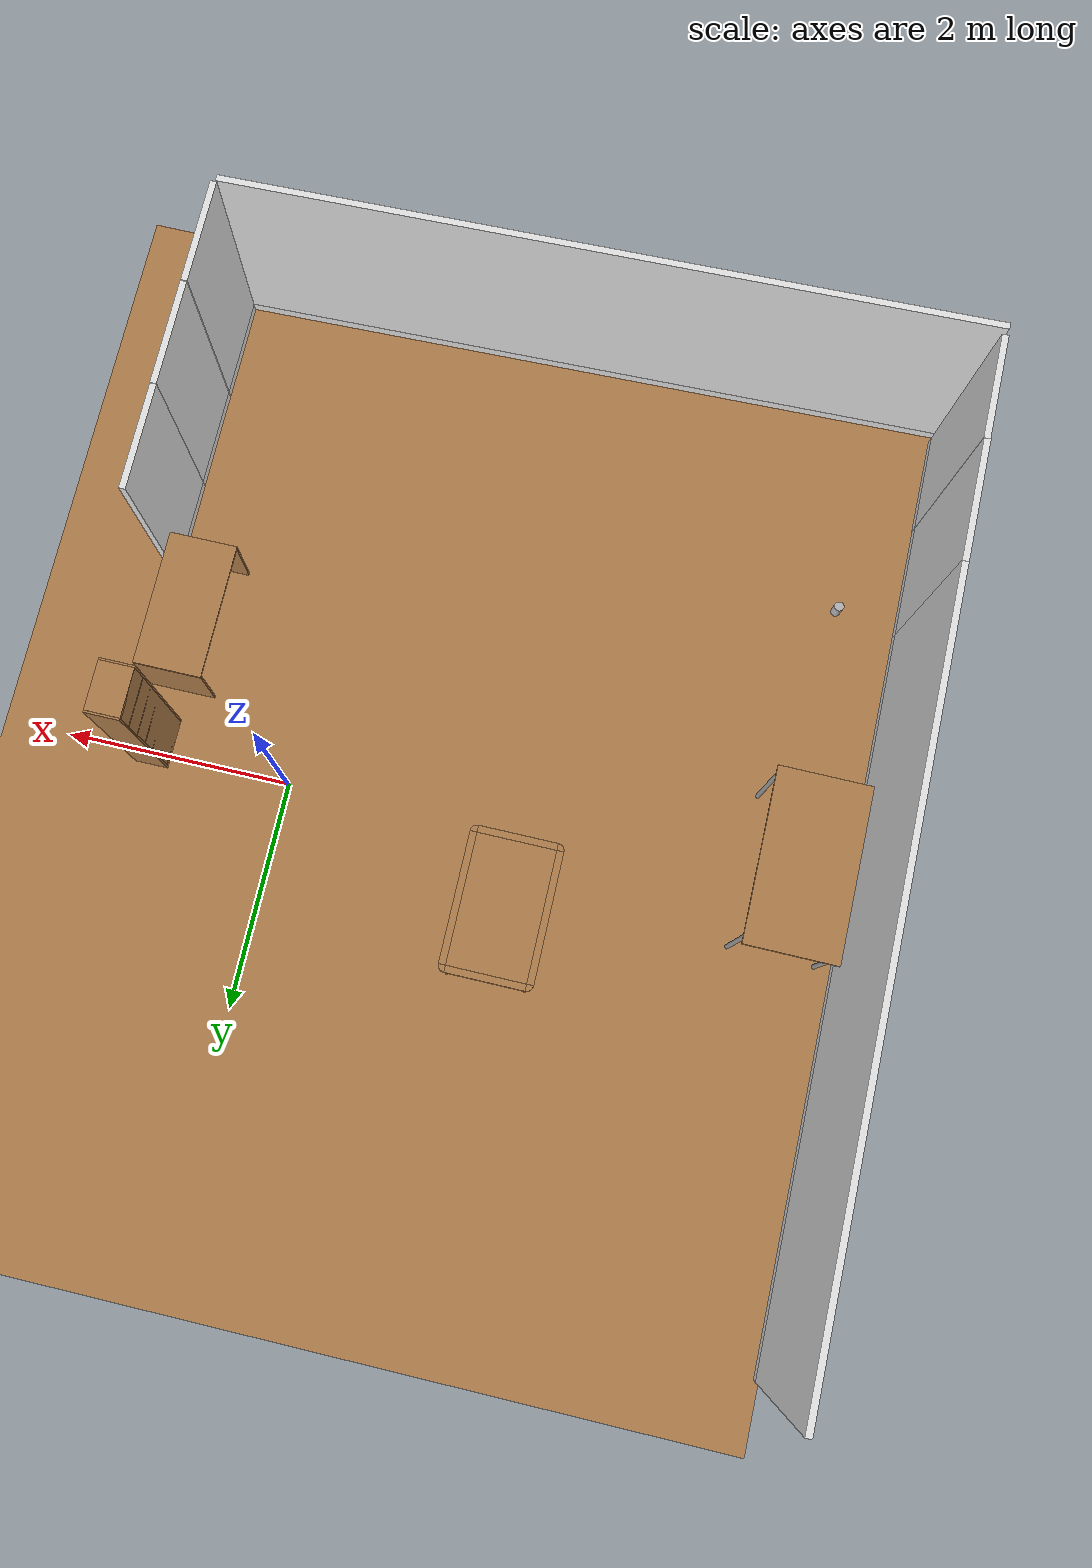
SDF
<sdf version="1.6">
 <world name="default">
  <model name="wrc_ground_plane">
   <static>1</static>
   <link name="link">
    <collision name="collision">
     <geometry><plane><normal>0 0 1</normal><size>10 10</size></plane></geometry>
     <surface>
      <contact><collide_bitmask>65535</collide_bitmask></contact>
      <friction><ode><mu>100</mu><mu2>50</mu2></ode></friction>
     </surface>
    </collision>
    <visual name="visual">
     <cast_shadows>0</cast_shadows>
     <geometry><plane><normal>0 0 1</normal><size>10 10</size></plane></geometry>
     <material>
      <script><uri>model://wrc_ground_plane/materials/wood.material</uri><name>WRS/WoodFloor</name></script>
     </material>
    </visual>
   </link>
  </model>
  <model name="kitchen_table">
   <link name="link">
    <inertial>
     <mass>10</mass>
     <inertia><ixx>1</ixx><ixy>0</ixy><ixz>0</ixz><iyy>1</iyy><iyz>0</iyz><izz>1</izz></inertia>
    </inertial>
    <visual name="center_board">
     <pose>0 0 0.68 0 -0 0</pose>
     <geometry><box><size>0.68 1.13 0.04</size></box></geometry>
     <material>
      <script><uri>model://base_materials/wood/scripts/wood.material</uri><name>base_materials/wood</name></script>
     </material>
    </visual>
    <collision name="collision_center_board">
     <pose>0 0 0.68 0 -0 0</pose>
     <geometry><box><size>0.68 1.13 0.04</size></box></geometry>
    </collision>
    <visual name="front_board">
     <pose>0.37 0 0.68 0 -0 0</pose>
     <geometry><box><size>0.06 1.13 0.04</size></box></geometry>
     <material>
      <script><uri>model://base_materials/wood/scripts/wood.material</uri><name>base_materials/wood</name></script>
     </material>
    </visual>
    <collision name="collision_front_board">
     <pose>0.37 0 0.68 0 -0 0</pose>
     <geometry><box><size>0.06 1.13 0.04</size></box></geometry>
    </collision>
    <visual name="back_board">
     <pose>-0.37 0 0.68 0 -0 0</pose>
     <geometry><box><size>0.06 1.13 0.04</size></box></geometry>
     <material>
      <script><uri>model://base_materials/wood/scripts/wood.material</uri><name>base_materials/wood</name></script>
     </material>
    </visual>
    <collision name="collision_back_board">
     <pose>-0.37 0 0.68 0 -0 0</pose>
     <geometry><box><size>0.06 1.13 0.04</size></box></geometry>
    </collision>
    <visual name="right_board">
     <pose>0 0.595 0.68 0 -0 0</pose>
     <geometry><box><size>0.68 0.06 0.04</size></box></geometry>
     <material>
      <script><uri>model://base_materials/wood/scripts/wood.material</uri><name>base_materials/wood</name></script>
     </material>
    </visual>
    <collision name="collision_right_board">
     <pose>0 0.595 0.68 0 -0 0</pose>
     <geometry><box><size>0.68 0.06 0.04</size></box></geometry>
    </collision>
    <visual name="left_board">
     <pose>0 -0.595 0.68 0 -0 0</pose>
     <geometry><box><size>0.68 0.06 0.04</size></box></geometry>
     <material>
      <script><uri>model://base_materials/wood/scripts/wood.material</uri><name>base_materials/wood</name></script>
     </material>
    </visual>
    <collision name="collision_left_board">
     <pose>0 -0.595 0.68 0 -0 0</pose>
     <geometry><box><size>0.68 0.06 0.04</size></box></geometry>
    </collision>
    <visual name="front_right_corner_board">
     <pose>0.34 0.565 0.68 0 -0 0</pose>
     <geometry><cylinder><radius>0.06</radius><length>0.039</length></cylinder></geometry>
     <material>
      <script><uri>model://base_materials/wood/scripts/wood.material</uri><name>base_materials/wood</name></script>
     </material>
    </visual>
    <collision name="collision_front_right_corner_board">
     <pose>0.34 0.565 0.68 0 -0 0</pose>
     <geometry><cylinder><radius>0.06</radius><length>0.039</length></cylinder></geometry>
    </collision>
    <visual name="front_left_corner_board">
     <pose>0.34 -0.565 0.68 0 -0 0</pose>
     <geometry><cylinder><radius>0.06</radius><length>0.039</length></cylinder></geometry>
     <material>
      <script><uri>model://base_materials/wood/scripts/wood.material</uri><name>base_materials/wood</name></script>
     </material>
    </visual>
    <collision name="collision_front_left_corner_board">
     <pose>0.34 -0.565 0.68 0 -0 0</pose>
     <geometry><cylinder><radius>0.06</radius><length>0.039</length></cylinder></geometry>
    </collision>
    <visual name="front_back_right_corner_board">
     <pose>-0.34 0.565 0.68 0 -0 0</pose>
     <geometry><cylinder><radius>0.06</radius><length>0.039</length></cylinder></geometry>
     <material>
      <script><uri>model://base_materials/wood/scripts/wood.material</uri><name>base_materials/wood</name></script>
     </material>
    </visual>
    <collision name="collision_back_right_corner_board">
     <pose>-0.34 0.565 0.68 0 -0 0</pose>
     <geometry><cylinder><radius>0.06</radius><length>0.039</length></cylinder></geometry>
    </collision>
    <visual name="front_back_left_corner_board">
     <pose>-0.34 -0.565 0.68 0 -0 0</pose>
     <geometry><cylinder><radius>0.06</radius><length>0.039</length></cylinder></geometry>
     <material>
      <script><uri>model://base_materials/wood/scripts/wood.material</uri><name>base_materials/wood</name></script>
     </material>
    </visual>
    <collision name="collision_back_left_corner_board">
     <pose>-0.34 -0.565 0.68 0 -0 0</pose>
     <geometry><cylinder><radius>0.06</radius><length>0.039</length></cylinder></geometry>
    </collision>
    <visual name="front_left_corner_frame1">
     <pose>0.345858 -0.57086 0.33 0 -0 0</pose>
     <geometry><cylinder><radius>0.02</radius><length>0.66</length></cylinder></geometry>
     <material>
      <script><uri>model://base_materials/wood/scripts/wood.material</uri><name>base_materials/wood</name></script>
     </material>
    </visual>
    <collision name="collision_front_left_corner_frame1">
     <pose>0.345858 -0.57086 0.33 0 -0 0</pose>
     <geometry><cylinder><radius>0.02</radius><length>0.66</length></cylinder></geometry>
    </collision>
    <visual name="front_left_corner_frame2">
     <pose>0.317574 -0.54257 0.33 0 -0 0.7854</pose>
     <geometry><box><size>0.04 0.08 0.66</size></box></geometry>
     <material>
      <script><uri>model://base_materials/wood/scripts/wood.material</uri><name>base_materials/wood</name></script>
     </material>
    </visual>
    <collision name="collision_front_left_corner_frame2">
     <pose>0.317574 -0.54257 0.33 0 -0 0.7854</pose>
     <geometry><box><size>0.04 0.08 0.66</size></box></geometry>
    </collision>
    <visual name="front_left_corner_frame3">
     <pose>0.289289 -0.51429 0.33 0 -0 0</pose>
     <geometry><cylinder><radius>0.02</radius><length>0.66</length></cylinder></geometry>
     <material>
      <script><uri>model://base_materials/wood/scripts/wood.material</uri><name>base_materials/wood</name></script>
     </material>
    </visual>
    <collision name="collision_front_left_corner_frame3">
     <pose>0.289289 -0.51429 0.33 0 -0 0</pose>
     <geometry><cylinder><radius>0.02</radius><length>0.66</length></cylinder></geometry>
    </collision>
    <visual name="front_right_corner_frame1">
     <pose>0.345858 0.57086 0.33 0 -0 0</pose>
     <geometry><cylinder><radius>0.02</radius><length>0.66</length></cylinder></geometry>
     <material>
      <script><uri>model://base_materials/wood/scripts/wood.material</uri><name>base_materials/wood</name></script>
     </material>
    </visual>
    <collision name="collision_front_right_corner_frame1">
     <pose>0.345858 0.57086 0.33 0 -0 0</pose>
     <geometry><cylinder><radius>0.02</radius><length>0.66</length></cylinder></geometry>
    </collision>
    <visual name="front_right_corner_frame2">
     <pose>0.317574 0.54257 0.33 0 0 -0.7854</pose>
     <geometry><box><size>0.04 0.08 0.66</size></box></geometry>
     <material>
      <script><uri>model://base_materials/wood/scripts/wood.material</uri><name>base_materials/wood</name></script>
     </material>
    </visual>
    <collision name="collision_front_right_corner_frame2">
     <pose>0.317574 0.54257 0.33 0 0 -0.7854</pose>
     <geometry><box><size>0.04 0.08 0.66</size></box></geometry>
    </collision>
    <visual name="front_right_corner_frame3">
     <pose>0.289289 0.51429 0.33 0 -0 0</pose>
     <geometry><cylinder><radius>0.02</radius><length>0.66</length></cylinder></geometry>
     <material>
      <script><uri>model://base_materials/wood/scripts/wood.material</uri><name>base_materials/wood</name></script>
     </material>
    </visual>
    <collision name="collision_front_right_corner_frame3">
     <pose>0.289289 0.51429 0.33 0 -0 0</pose>
     <geometry><cylinder><radius>0.02</radius><length>0.66</length></cylinder></geometry>
    </collision>
    <visual name="back_left_corner_frame1">
     <pose>-0.345858 -0.57086 0.33 0 -0 0</pose>
     <geometry><cylinder><radius>0.02</radius><length>0.66</length></cylinder></geometry>
     <material>
      <script><uri>model://base_materials/wood/scripts/wood.material</uri><name>base_materials/wood</name></script>
     </material>
    </visual>
    <collision name="collision_back_left_corner_frame1">
     <pose>-0.345858 -0.57086 0.33 0 -0 0</pose>
     <geometry><cylinder><radius>0.02</radius><length>0.66</length></cylinder></geometry>
    </collision>
    <visual name="back_left_corner_frame2">
     <pose>-0.317574 -0.54257 0.33 0 0 -0.7854</pose>
     <geometry><box><size>0.04 0.08 0.66</size></box></geometry>
     <material>
      <script><uri>model://base_materials/wood/scripts/wood.material</uri><name>base_materials/wood</name></script>
     </material>
    </visual>
    <collision name="collision_back_left_corner_frame2">
     <pose>-0.317574 -0.54257 0.33 0 0 -0.7854</pose>
     <geometry><box><size>0.04 0.08 0.66</size></box></geometry>
    </collision>
    <visual name="back_left_corner_frame3">
     <pose>-0.289289 -0.51429 0.33 0 -0 0</pose>
     <geometry><cylinder><radius>0.02</radius><length>0.66</length></cylinder></geometry>
     <material>
      <script><uri>model://base_materials/wood/scripts/wood.material</uri><name>base_materials/wood</name></script>
     </material>
    </visual>
    <collision name="collision_back_left_corner_frame3">
     <pose>-0.289289 -0.51429 0.33 0 -0 0</pose>
     <geometry><cylinder><radius>0.02</radius><length>0.66</length></cylinder></geometry>
    </collision>
    <visual name="back_right_corner_frame1">
     <pose>-0.345858 0.57086 0.33 0 -0 0</pose>
     <geometry><cylinder><radius>0.02</radius><length>0.66</length></cylinder></geometry>
     <material>
      <script><uri>model://base_materials/wood/scripts/wood.material</uri><name>base_materials/wood</name></script>
     </material>
    </visual>
    <collision name="collision_back_right_corner_frame1">
     <pose>-0.345858 0.57086 0.33 0 -0 0</pose>
     <geometry><cylinder><radius>0.02</radius><length>0.66</length></cylinder></geometry>
    </collision>
    <visual name="back_right_corner_frame2">
     <pose>-0.317574 0.54257 0.33 0 -0 0.7854</pose>
     <geometry><box><size>0.04 0.08 0.66</size></box></geometry>
     <material>
      <script><uri>model://base_materials/wood/scripts/wood.material</uri><name>base_materials/wood</name></script>
     </material>
    </visual>
    <collision name="collision_back_right_corner_frame2">
     <pose>-0.317574 0.54257 0.33 0 -0 0.7854</pose>
     <geometry><box><size>0.04 0.08 0.66</size></box></geometry>
    </collision>
    <visual name="back_right_corner_frame3">
     <pose>-0.289289 0.51429 0.33 0 -0 0</pose>
     <geometry><cylinder><radius>0.02</radius><length>0.66</length></cylinder></geometry>
     <material>
      <script><uri>model://base_materials/wood/scripts/wood.material</uri><name>base_materials/wood</name></script>
     </material>
    </visual>
    <collision name="collision_back_right_corner_frame3">
     <pose>-0.289289 0.51429 0.33 0 -0 0</pose>
     <geometry><cylinder><radius>0.02</radius><length>0.66</length></cylinder></geometry>
    </collision>
    <velocity_decay><linear>0</linear><angular>0</angular></velocity_decay>
   </link>
   <static>1</static>
   <pose>-2.0884 0.705344 0 0 -0 0</pose>
  </model>
  <model name="full_wall_55_6475_2090">
   <link name="link">
    <inertial>
     <mass>50</mass>
     <inertia><ixx>1</ixx><ixy>0</ixy><ixz>0</ixz><iyy>1</iyy><iyz>0</iyz><izz>1</izz></inertia>
    </inertial>
    <visual name="bottom_frame">
     <pose>0 0 0.05 0 -0 0</pose>
     <geometry><box><size>0.055 6.475 0.1</size></box></geometry>
     <material>
      <script><uri>model://base_materials/color/scripts</uri><name>hsr_color/white</name></script>
     </material>
    </visual>
    <collision name="collision_bottom_frame">
     <pose>0 0 0.05 0 -0 0</pose>
     <geometry><box><size>0.055 6.475 0.1</size></box></geometry>
    </collision>
    <visual name="wall">
     <pose>0 0 1.095 0 -0 0</pose>
     <geometry><box><size>0.055 6.475 1.99</size></box></geometry>
     <material>
      <script>
       <uri>model://base_materials/wall/scripts</uri>
       <uri>model://base_materials/wall/textures</uri>
       <name>wall/white_noise</name>
      </script>
     </material>
    </visual>
    <collision name="collision_wall">
     <pose>0 0 1.095 0 -0 0</pose>
     <geometry><box><size>0.055 6.475 1.99</size></box></geometry>
    </collision>
    <velocity_decay><linear>0</linear><angular>0</angular></velocity_decay>
   </link>
   <static>1</static>
   <pose>-4.98133 0.698061 0 0 -0 0</pose>
  </model>
  <model name="full_wall_55_900_2090">
   <link name="link">
    <inertial>
     <mass>50</mass>
     <inertia><ixx>1</ixx><ixy>0</ixy><ixz>0</ixz><iyy>1</iyy><iyz>0</iyz><izz>1</izz></inertia>
    </inertial>
    <visual name="bottom_frame">
     <pose>0 0 0.05 0 -0 0</pose>
     <geometry><box><size>0.055 1.04 0.1</size></box></geometry>
     <material>
      <script><uri>model://base_materials/color/scripts</uri><name>hsr_color/white</name></script>
     </material>
    </visual>
    <collision name="collision_bottom_frame">
     <pose>0 0 0.05 0 -0 0</pose>
     <geometry><box><size>0.055 1.04 0.1</size></box></geometry>
    </collision>
    <visual name="wall">
     <pose>0 0 1.095 0 -0 0</pose>
     <geometry><box><size>0.055 1.04 1.99</size></box></geometry>
     <material>
      <script>
       <uri>model://base_materials/wall/scripts</uri>
       <uri>model://base_materials/wall/textures</uri>
       <name>wall/white_noise</name>
      </script>
     </material>
    </visual>
    <collision name="collision_wall">
     <pose>0 0 1.095 0 -0 0</pose>
     <geometry><box><size>0.055 1.04 1.99</size></box></geometry>
    </collision>
    <velocity_decay><linear>0</linear><angular>0</angular></velocity_decay>
   </link>
   <static>1</static>
   <pose>-4.98186 -3.05819 0 0 -0 0</pose>
  </model>
  <model name="full_wall_55_900_2090_0">
   <link name="link">
    <inertial>
     <mass>50</mass>
     <inertia><ixx>1</ixx><ixy>0</ixy><ixz>0</ixz><iyy>1</iyy><iyz>0</iyz><izz>1</izz></inertia>
    </inertial>
    <visual name="bottom_frame">
     <pose>0 0 0.05 0 -0 0</pose>
     <geometry><box><size>0.055 0.9 0.1</size></box></geometry>
     <material>
      <script><uri>model://base_materials/color/scripts</uri><name>hsr_color/white</name></script>
     </material>
    </visual>
    <collision name="collision_bottom_frame">
     <pose>0 0 0.05 0 -0 0</pose>
     <geometry><box><size>0.055 0.9 0.1</size></box></geometry>
    </collision>
    <visual name="wall">
     <pose>0 0 1.095 0 -0 0</pose>
     <geometry><box><size>0.055 0.9 1.99</size></box></geometry>
     <material>
      <script>
       <uri>model://base_materials/wall/scripts</uri>
       <uri>model://base_materials/wall/textures</uri>
       <name>wall/white_noise</name>
      </script>
     </material>
    </visual>
    <collision name="collision_wall">
     <pose>0 0 1.095 0 -0 0</pose>
     <geometry><box><size>0.055 0.9 1.99</size></box></geometry>
    </collision>
    <velocity_decay><linear>0</linear><angular>0</angular></velocity_decay>
   </link>
   <static>1</static>
   <pose>-4.97819 -4.022 0 0 -0 0</pose>
  </model>
  <model name="full_wall_55_6475_2090_0">
   <link name="link">
    <inertial>
     <mass>50</mass>
     <inertia><ixx>1</ixx><ixy>0</ixy><ixz>0</ixz><iyy>1</iyy><iyz>0</iyz><izz>1</izz></inertia>
    </inertial>
    <visual name="bottom_frame">
     <pose>0 0 0.05 0 -0 0</pose>
     <geometry><box><size>0.055 6.475 0.1</size></box></geometry>
     <material>
      <script><uri>model://base_materials/color/scripts</uri><name>hsr_color/white</name></script>
     </material>
    </visual>
    <collision name="collision_bottom_frame">
     <pose>0 0 0.05 0 -0 0</pose>
     <geometry><box><size>0.055 6.475 0.1</size></box></geometry>
    </collision>
    <visual name="wall">
     <pose>0 0 1.095 0 -0 0</pose>
     <geometry><box><size>0.055 6.475 1.99</size></box></geometry>
     <material>
      <script>
       <uri>model://base_materials/wall/scripts</uri>
       <uri>model://base_materials/wall/textures</uri>
       <name>wall/white_noise</name>
      </script>
     </material>
    </visual>
    <collision name="collision_wall">
     <pose>0 0 1.095 0 -0 0</pose>
     <geometry><box><size>0.055 6.475 1.99</size></box></geometry>
    </collision>
    <velocity_decay><linear>0</linear><angular>0</angular></velocity_decay>
   </link>
   <static>1</static>
   <pose>-1.76352 -4.46985 0 0 -0 1.59642</pose>
  </model>
  <model name="full_wall_55_900_2090_1">
   <link name="link">
    <inertial>
     <mass>50</mass>
     <inertia><ixx>1</ixx><ixy>0</ixy><ixz>0</ixz><iyy>1</iyy><iyz>0</iyz><izz>1</izz></inertia>
    </inertial>
    <visual name="bottom_frame">
     <pose>0 0 0.05 0 -0 0</pose>
     <geometry><box><size>0.055 0.9 0.1</size></box></geometry>
     <material>
      <script><uri>model://base_materials/color/scripts</uri><name>hsr_color/white</name></script>
     </material>
    </visual>
    <collision name="collision_bottom_frame">
     <pose>0 0 0.05 0 -0 0</pose>
     <geometry><box><size>0.055 0.9 0.1</size></box></geometry>
    </collision>
    <visual name="wall">
     <pose>0 0 1.095 0 -0 0</pose>
     <geometry><box><size>0.055 0.9 1.99</size></box></geometry>
     <material>
      <script>
       <uri>model://base_materials/wall/scripts</uri>
       <uri>model://base_materials/wall/textures</uri>
       <name>wall/white_noise</name>
      </script>
     </material>
    </visual>
    <collision name="collision_wall">
     <pose>0 0 1.095 0 -0 0</pose>
     <geometry><box><size>0.055 0.9 1.99</size></box></geometry>
    </collision>
    <velocity_decay><linear>0</linear><angular>0</angular></velocity_decay>
   </link>
   <static>1</static>
   <pose>1.48612 -3.90071 0 0 -0 0</pose>
  </model>
  <model name="full_wall_55_900_2090_2">
   <link name="link">
    <inertial>
     <mass>50</mass>
     <inertia><ixx>1</ixx><ixy>0</ixy><ixz>0</ixz><iyy>1</iyy><iyz>0</iyz><izz>1</izz></inertia>
    </inertial>
    <visual name="bottom_frame">
     <pose>0 0 0.05 0 -0 0</pose>
     <geometry><box><size>0.055 0.9 0.1</size></box></geometry>
     <material>
      <script><uri>model://base_materials/color/scripts</uri><name>hsr_color/white</name></script>
     </material>
    </visual>
    <collision name="collision_bottom_frame">
     <pose>0 0 0.05 0 -0 0</pose>
     <geometry><box><size>0.055 0.9 0.1</size></box></geometry>
    </collision>
    <visual name="wall">
     <pose>0 0 1.095 0 -0 0</pose>
     <geometry><box><size>0.055 0.9 1.99</size></box></geometry>
     <material>
      <script>
       <uri>model://base_materials/wall/scripts</uri>
       <uri>model://base_materials/wall/textures</uri>
       <name>wall/white_noise</name>
      </script>
     </material>
    </visual>
    <collision name="collision_wall">
     <pose>0 0 1.095 0 -0 0</pose>
     <geometry><box><size>0.055 0.9 1.99</size></box></geometry>
    </collision>
    <velocity_decay><linear>0</linear><angular>0</angular></velocity_decay>
   </link>
   <static>1</static>
   <pose>1.48699 -2.99289 0 0 -0 0</pose>
  </model>
  <model name="full_wall_55_900_2090_3">
   <link name="link">
    <inertial>
     <mass>50</mass>
     <inertia><ixx>1</ixx><ixy>0</ixy><ixz>0</ixz><iyy>1</iyy><iyz>0</iyz><izz>1</izz></inertia>
    </inertial>
    <visual name="bottom_frame">
     <pose>0 0 0.05 0 -0 0</pose>
     <geometry><box><size>0.055 0.9 0.1</size></box></geometry>
     <material>
      <script><uri>model://base_materials/color/scripts</uri><name>hsr_color/white</name></script>
     </material>
    </visual>
    <collision name="collision_bottom_frame">
     <pose>0 0 0.05 0 -0 0</pose>
     <geometry><box><size>0.055 0.9 0.1</size></box></geometry>
    </collision>
    <visual name="wall">
     <pose>0 0 1.095 0 -0 0</pose>
     <geometry><box><size>0.055 0.9 1.99</size></box></geometry>
     <material>
      <script>
       <uri>model://base_materials/wall/scripts</uri>
       <uri>model://base_materials/wall/textures</uri>
       <name>wall/white_noise</name>
      </script>
     </material>
    </visual>
    <collision name="collision_wall">
     <pose>0 0 1.095 0 -0 0</pose>
     <geometry><box><size>0.055 0.9 1.99</size></box></geometry>
    </collision>
    <velocity_decay><linear>0</linear><angular>0</angular></velocity_decay>
   </link>
   <static>1</static>
   <pose>1.48439 -2.08933 0 0 -0 0</pose>
  </model>
  <model name="high_shelf">
   <link name="link">
    <inertial>
     <mass>5</mass>
     <inertia><ixx>1</ixx><ixy>0</ixy><ixz>0</ixz><iyy>1</iyy><iyz>0</iyz><izz>1</izz></inertia>
    </inertial>
    <visual name="left_board">
     <pose>-0.1475 0.009 0.898 0 -0 0</pose>
     <geometry><box><size>0.295 0.018 1.796</size></box></geometry>
     <material>
      <script>
       <uri>model://base_materials/wood/scripts</uri>
       <uri>model://base_materials/wood/textures</uri>
       <name>base_materials/light_wood</name>
      </script>
     </material>
    </visual>
    <collision name="collision_left_board">
     <pose>-0.1475 0.009 0.898 0 -0 0</pose>
     <geometry><box><size>0.295 0.018 1.796</size></box></geometry>
    </collision>
    <visual name="right_board">
     <pose>-0.1475 0.441 0.898 0 -0 0</pose>
     <geometry><box><size>0.295 0.018 1.796</size></box></geometry>
     <material>
      <script>
       <uri>model://base_materials/wood/scripts</uri>
       <uri>model://base_materials/wood/textures</uri>
       <name>base_materials/light_wood</name>
      </script>
     </material>
    </visual>
    <collision name="collision_right_board">
     <pose>-0.1475 0.441 0.898 0 -0 0</pose>
     <geometry><box><size>0.295 0.018 1.796</size></box></geometry>
    </collision>
    <visual name="top_board">
     <pose>-0.1475 0.225 1.7825 0 -0 0</pose>
     <geometry><box><size>0.295 0.414 0.035</size></box></geometry>
     <material>
      <script>
       <uri>model://base_materials/wood/scripts</uri>
       <uri>model://base_materials/wood/textures</uri>
       <name>base_materials/light_wood</name>
      </script>
     </material>
    </visual>
    <collision name="collision_top_board">
     <pose>-0.1475 0.225 1.7825 0 -0 0</pose>
     <geometry><box><size>0.295 0.414 0.035</size></box></geometry>
    </collision>
    <visual name="1st_shelf">
     <pose>-0.162 0.225 1.51 0 -0 0</pose>
     <geometry><box><size>0.266 0.414 0.018</size></box></geometry>
     <material>
      <script>
       <uri>model://base_materials/wood/scripts</uri>
       <uri>model://base_materials/wood/textures</uri>
       <name>base_materials/light_wood</name>
      </script>
     </material>
    </visual>
    <collision name="collision_1st_shelf">
     <pose>-0.162 0.225 1.51 0 -0 0</pose>
     <geometry><box><size>0.266 0.414 0.018</size></box></geometry>
    </collision>
    <visual name="2nd_shelf">
     <pose>-0.162 0.225 1.22 0 -0 0</pose>
     <geometry><box><size>0.266 0.414 0.018</size></box></geometry>
     <material>
      <script>
       <uri>model://base_materials/wood/scripts</uri>
       <uri>model://base_materials/wood/textures</uri>
       <name>base_materials/light_wood</name>
      </script>
     </material>
    </visual>
    <collision name="collision_2nd_shelf">
     <pose>-0.162 0.225 1.22 0 -0 0</pose>
     <geometry><box><size>0.266 0.414 0.018</size></box></geometry>
    </collision>
    <visual name="3rd_shelf">
     <pose>-0.162 0.225 0.93 0 -0 0</pose>
     <geometry><box><size>0.266 0.414 0.018</size></box></geometry>
     <material>
      <script>
       <uri>model://base_materials/wood/scripts</uri>
       <uri>model://base_materials/wood/textures</uri>
       <name>base_materials/light_wood</name>
      </script>
     </material>
    </visual>
    <collision name="collision_3rd_shelf">
     <pose>-0.162 0.225 0.93 0 -0 0</pose>
     <geometry><box><size>0.266 0.414 0.018</size></box></geometry>
    </collision>
    <visual name="4th_shelf">
     <pose>-0.162 0.225 0.65 0 -0 0</pose>
     <geometry><box><size>0.266 0.414 0.018</size></box></geometry>
     <material>
      <script>
       <uri>model://base_materials/wood/scripts</uri>
       <uri>model://base_materials/wood/textures</uri>
       <name>base_materials/light_wood</name>
      </script>
     </material>
    </visual>
    <collision name="collision_4th_shelf">
     <pose>-0.162 0.225 0.65 0 -0 0</pose>
     <geometry><box><size>0.266 0.414 0.018</size></box></geometry>
    </collision>
    <visual name="5th_shelf">
     <pose>-0.162 0.225 0.36 0 -0 0</pose>
     <geometry><box><size>0.266 0.414 0.018</size></box></geometry>
     <material>
      <script>
       <uri>model://base_materials/wood/scripts</uri>
       <uri>model://base_materials/wood/textures</uri>
       <name>base_materials/light_wood</name>
      </script>
     </material>
    </visual>
    <collision name="collision_5th_shelf">
     <pose>-0.162 0.225 0.36 0 -0 0</pose>
     <geometry><box><size>0.266 0.414 0.018</size></box></geometry>
    </collision>
    <visual name="bottom_board">
     <pose>-0.1475 0.225 0.035 0 -0 0</pose>
     <geometry><box><size>0.295 0.414 0.07</size></box></geometry>
     <material>
      <script>
       <uri>model://base_materials/wood/scripts</uri>
       <uri>model://base_materials/wood/textures</uri>
       <name>base_materials/light_wood</name>
      </script>
     </material>
    </visual>
    <collision name="collision_bottom_board">
     <pose>-0.1475 0.225 0.035 0 -0 0</pose>
     <geometry><box><size>0.295 0.414 0.07</size></box></geometry>
    </collision>
    <visual name="back_board">
     <pose>-0.286 0.225 0.898 0 -0 0</pose>
     <geometry><box><size>0.018 0.414 1.796</size></box></geometry>
     <material>
      <script>
       <uri>model://base_materials/wood/scripts</uri>
       <uri>model://base_materials/wood/textures</uri>
       <name>base_materials/light_wood</name>
      </script>
     </material>
    </visual>
    <collision name="collision_back_board">
     <pose>-0.286 0.225 0.898 0 -0 0</pose>
     <geometry><box><size>0.018 0.414 1.796</size></box></geometry>
    </collision>
    <velocity_decay><linear>0</linear><angular>0</angular></velocity_decay>
   </link>
   <static>1</static>
   <pose>1.37619 -0.357647 0 0 -0 0</pose>
  </model>
  <model name="table_0">
   <static>1</static>
   <link name="link">
    <collision name="surface">
     <pose>0 0 1 0 -0 0</pose>
     <geometry><box><size>1.5 0.8 0.03</size></box></geometry>
     <surface><friction><ode><mu>0.6</mu><mu2>0.6</mu2></ode></friction></surface>
    </collision>
    <visual name="visual1">
     <pose>0 0 1 0 -0 0</pose>
     <geometry><box><size>1.5 0.8 0.03</size></box></geometry>
     <material>
      <script><uri>file://media/materials/scripts/gazebo.material</uri><name>Gazebo/Wood</name></script>
     </material>
    </visual>
    <collision name="front_left_leg">
     <pose>0.68 0.38 0.5 0 -0 0</pose>
     <geometry><cylinder><radius>0.02</radius><length>1</length></cylinder></geometry>
    </collision>
    <visual name="front_left_leg">
     <pose>0.68 0.38 0.5 0 -0 0</pose>
     <geometry><cylinder><radius>0.02</radius><length>1</length></cylinder></geometry>
     <material>
      <script><uri>file://media/materials/scripts/gazebo.material</uri><name>Gazebo/Grey</name></script>
     </material>
    </visual>
    <collision name="front_right_leg">
     <pose>0.68 -0.38 0.5 0 -0 0</pose>
     <geometry><cylinder><radius>0.02</radius><length>1</length></cylinder></geometry>
    </collision>
    <visual name="front_right_leg">
     <pose>0.68 -0.38 0.5 0 -0 0</pose>
     <geometry><cylinder><radius>0.02</radius><length>1</length></cylinder></geometry>
     <material>
      <script><uri>file://media/materials/scripts/gazebo.material</uri><name>Gazebo/Grey</name></script>
     </material>
    </visual>
    <collision name="back_right_leg">
     <pose>-0.68 -0.38 0.5 0 -0 0</pose>
     <geometry><cylinder><radius>0.02</radius><length>1</length></cylinder></geometry>
    </collision>
    <visual name="back_right_leg">
     <pose>-0.68 -0.38 0.5 0 -0 0</pose>
     <geometry><cylinder><radius>0.02</radius><length>1</length></cylinder></geometry>
     <material>
      <script><uri>file://media/materials/scripts/gazebo.material</uri><name>Gazebo/Grey</name></script>
     </material>
    </visual>
    <collision name="back_left_leg">
     <pose>-0.68 0.38 0.5 0 -0 0</pose>
     <geometry><cylinder><radius>0.02</radius><length>1</length></cylinder></geometry>
    </collision>
    <visual name="back_left_leg">
     <pose>-0.68 0.38 0.5 0 -0 0</pose>
     <geometry><cylinder><radius>0.02</radius><length>1</length></cylinder></geometry>
     <material>
      <script><uri>file://media/materials/scripts/gazebo.material</uri><name>Gazebo/Grey</name></script>
     </material>
    </visual>
   </link>
   <pose>-4.43299 -0.163291 -0.001944 7e-06 -0.002543 -1.57348</pose>
  </model>
  <model name="office_desk1">
   <link name="link">
    <inertial>
     <mass>10</mass>
     <inertia><ixx>1</ixx><ixy>0</ixy><ixz>0</ixz><iyy>1</iyy><iyz>0</iyz><izz>1</izz></inertia>
    </inertial>
    <velocity_decay><linear>0</linear><angular>0</angular></velocity_decay>
    <visual name="top_board">
     <pose>-0.3 0.6 0.69 0 -0 0</pose>
     <geometry><box><size>0.6 1.2 0.02</size></box></geometry>
     <material>
      <script>
       <uri>model://base_materials/wood/scripts/wood.material</uri>
       <name>base_materials/dark_wood</name>
      </script>
      <shader type="pixel"><normal_map>__default__</normal_map></shader>
      <ambient>1 1 1 1</ambient>
      <diffuse>0.2 0.2 0.2 1</diffuse>
      <specular>0 0 0 1</specular>
      <emissive>0 0 0 1</emissive>
     </material>
    </visual>
    <visual name="left_board">
     <pose>-0.3 0.01 0.34 0 -0 0</pose>
     <geometry><box><size>0.6 0.02 0.68</size></box></geometry>
     <material>
      <script>
       <uri>model://base_materials/wood/scripts/wood.material</uri>
       <name>base_materials/dark_wood</name>
      </script>
      <shader type="pixel"><normal_map>__default__</normal_map></shader>
      <ambient>0.2 0.2 0.2 1</ambient>
      <diffuse>0.2 0.2 0.2 1</diffuse>
      <specular>0 0 0 1</specular>
      <emissive>0 0 0 1</emissive>
     </material>
    </visual>
    <visual name="right_board">
     <pose>-0.3 1.19 0.34 0 -0 0</pose>
     <geometry><box><size>0.6 0.02 0.68</size></box></geometry>
     <material>
      <script>
       <uri>model://base_materials/wood/scripts/wood.material</uri>
       <name>base_materials/dark_wood</name>
      </script>
      <shader type="pixel"><normal_map>__default__</normal_map></shader>
      <ambient>0.2 0.2 0.2 1</ambient>
      <diffuse>0.2 0.2 0.2 1</diffuse>
      <specular>0 0 0 1</specular>
      <emissive>0 0 0 1</emissive>
     </material>
    </visual>
    <visual name="center_board">
     <pose>-0.14 0.6 0.49 0 -0 0</pose>
     <geometry><box><size>0.02 1.16 0.4</size></box></geometry>
     <material>
      <script>
       <uri>model://base_materials/wood/scripts/wood.material</uri>
       <name>base_materials/dark_wood</name>
      </script>
      <shader type="pixel"><normal_map>__default__</normal_map></shader>
      <ambient>0.2 0.2 0.2 1</ambient>
      <diffuse>0.2 0.2 0.2 1</diffuse>
      <specular>0 0 0 1</specular>
      <emissive>0 0 0 1</emissive>
     </material>
    </visual>
    <collision name="collision_top_board">
     <pose>-0.3 0.6 0.69 0 -0 0</pose>
     <geometry><box><size>0.6 1.2 0.02</size></box></geometry>
     <surface>
      <friction>
       <ode><mu>1</mu><mu2>1</mu2><fdir1>0 0 0</fdir1><slip1>0</slip1><slip2>0</slip2></ode>
       <torsional>
        <coefficient>1</coefficient>
        <patch_radius>0</patch_radius>
        <surface_radius>0</surface_radius>
        <use_patch_radius>1</use_patch_radius>
        <ode><slip>0</slip></ode>
       </torsional>
      </friction>
      <bounce><restitution_coefficient>0</restitution_coefficient><threshold>1e+06</threshold></bounce>
      <contact>
       <collide_without_contact>0</collide_without_contact>
       <collide_without_contact_bitmask>1</collide_without_contact_bitmask>
       <collide_bitmask>1</collide_bitmask>
       <ode>
        <soft_cfm>0</soft_cfm>
        <soft_erp>0.2</soft_erp>
        <kp>1e+13</kp>
        <kd>1</kd>
        <max_vel>0.01</max_vel>
        <min_depth>0</min_depth>
       </ode>
       <bullet>
        <split_impulse>1</split_impulse>
        <split_impulse_penetration_threshold>-0.01</split_impulse_penetration_threshold>
        <soft_cfm>0</soft_cfm>
        <soft_erp>0.2</soft_erp>
        <kp>1e+13</kp>
        <kd>1</kd>
       </bullet>
      </contact>
     </surface>
    </collision>
    <collision name="collision_left_board">
     <pose>-0.3 0.01 0.34 0 -0 0</pose>
     <geometry><box><size>0.6 0.02 0.68</size></box></geometry>
     <surface>
      <friction>
       <ode><mu>1</mu><mu2>1</mu2><fdir1>0 0 0</fdir1><slip1>0</slip1><slip2>0</slip2></ode>
       <torsional>
        <coefficient>1</coefficient>
        <patch_radius>0</patch_radius>
        <surface_radius>0</surface_radius>
        <use_patch_radius>1</use_patch_radius>
        <ode><slip>0</slip></ode>
       </torsional>
      </friction>
      <bounce><restitution_coefficient>0</restitution_coefficient><threshold>1e+06</threshold></bounce>
      <contact>
       <collide_without_contact>0</collide_without_contact>
       <collide_without_contact_bitmask>1</collide_without_contact_bitmask>
       <collide_bitmask>1</collide_bitmask>
       <ode>
        <soft_cfm>0</soft_cfm>
        <soft_erp>0.2</soft_erp>
        <kp>1e+13</kp>
        <kd>1</kd>
        <max_vel>0.01</max_vel>
        <min_depth>0</min_depth>
       </ode>
       <bullet>
        <split_impulse>1</split_impulse>
        <split_impulse_penetration_threshold>-0.01</split_impulse_penetration_threshold>
        <soft_cfm>0</soft_cfm>
        <soft_erp>0.2</soft_erp>
        <kp>1e+13</kp>
        <kd>1</kd>
       </bullet>
      </contact>
     </surface>
    </collision>
    <collision name="ollision_center_board">
     <pose>-0.14 0.6 0.49 0 -0 0</pose>
     <geometry><box><size>0.02 1.16 0.4</size></box></geometry>
     <surface>
      <friction>
       <ode><mu>1</mu><mu2>1</mu2><fdir1>0 0 0</fdir1><slip1>0</slip1><slip2>0</slip2></ode>
       <torsional>
        <coefficient>1</coefficient>
        <patch_radius>0</patch_radius>
        <surface_radius>0</surface_radius>
        <use_patch_radius>1</use_patch_radius>
        <ode><slip>0</slip></ode>
       </torsional>
      </friction>
      <bounce><restitution_coefficient>0</restitution_coefficient><threshold>1e+06</threshold></bounce>
      <contact>
       <collide_without_contact>0</collide_without_contact>
       <collide_without_contact_bitmask>1</collide_without_contact_bitmask>
       <collide_bitmask>1</collide_bitmask>
       <ode>
        <soft_cfm>0</soft_cfm>
        <soft_erp>0.2</soft_erp>
        <kp>1e+13</kp>
        <kd>1</kd>
        <max_vel>0.01</max_vel>
        <min_depth>0</min_depth>
       </ode>
       <bullet>
        <split_impulse>1</split_impulse>
        <split_impulse_penetration_threshold>-0.01</split_impulse_penetration_threshold>
        <soft_cfm>0</soft_cfm>
        <soft_erp>0.2</soft_erp>
        <kp>1e+13</kp>
        <kd>1</kd>
       </bullet>
      </contact>
     </surface>
    </collision>
    <collision name="collision_right_board">
     <pose>-0.3 1.19 0.34 0 -0 0</pose>
     <geometry><box><size>0.6 0.02 0.68</size></box></geometry>
     <surface>
      <friction>
       <ode><mu>1</mu><mu2>1</mu2><fdir1>0 0 0</fdir1><slip1>0</slip1><slip2>0</slip2></ode>
       <torsional>
        <coefficient>1</coefficient>
        <patch_radius>0</patch_radius>
        <surface_radius>0</surface_radius>
        <use_patch_radius>1</use_patch_radius>
        <ode><slip>0</slip></ode>
       </torsional>
      </friction>
      <bounce><restitution_coefficient>0</restitution_coefficient><threshold>1e+06</threshold></bounce>
      <contact>
       <collide_without_contact>0</collide_without_contact>
       <collide_without_contact_bitmask>1</collide_without_contact_bitmask>
       <collide_bitmask>1</collide_bitmask>
       <ode>
        <soft_cfm>0</soft_cfm>
        <soft_erp>0.2</soft_erp>
        <kp>1e+13</kp>
        <kd>1</kd>
        <max_vel>0.01</max_vel>
        <min_depth>0</min_depth>
       </ode>
       <bullet>
        <split_impulse>1</split_impulse>
        <split_impulse_penetration_threshold>-0.01</split_impulse_penetration_threshold>
        <soft_cfm>0</soft_cfm>
        <soft_erp>0.2</soft_erp>
        <kp>1e+13</kp>
        <kd>1</kd>
       </bullet>
      </contact>
     </surface>
    </collision>
   </link>
   <static>1</static>
   <pose>1.44241 -1.81938 0 0 -0 0</pose>
  </model>
  <model name="sprite">
   <static>0</static>
   <link name="link">
    <inertial>
     <mass>0.25</mass>
     <inertia><ixx>0</ixx><ixy>0</ixy><ixz>0</ixz><iyy>0</iyy><iyz>0</iyz><izz>0</izz></inertia>
    </inertial>
    <collision name="collision">
     <pose>0 0 0.075 -3.14159 -0 0</pose>
     <geometry><cylinder><radius>0.04</radius><length>0.15</length></cylinder></geometry>
    </collision>
    <visual name="visual">
     <pose>0 0 0.075 -3.14159 -0 0</pose>
     <geometry><cylinder><radius>0.04</radius><length>0.15</length></cylinder></geometry>
     <material>
      <script>
       <uri>model://sprite/material/scripts</uri>
       <uri>model://sprite/material/textures</uri>
       <name>Custom/sprite</name>
      </script>
     </material>
    </visual>
    <velocity_decay><linear>0</linear><angular>0</angular></velocity_decay>
   </link>
   <pose>-4.27822 -2.3618 0.845008 0.000165 -0.000111 2.96261</pose>
  </model>
 </world>
</sdf>
